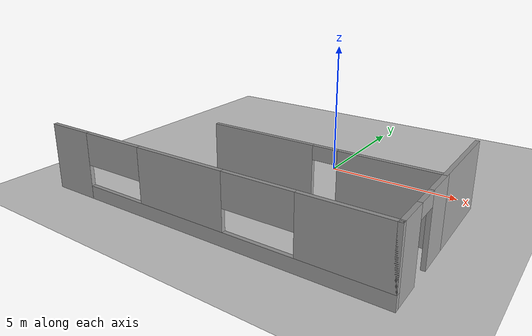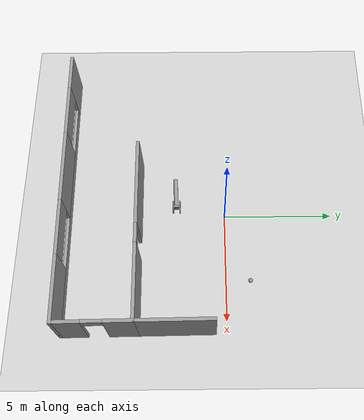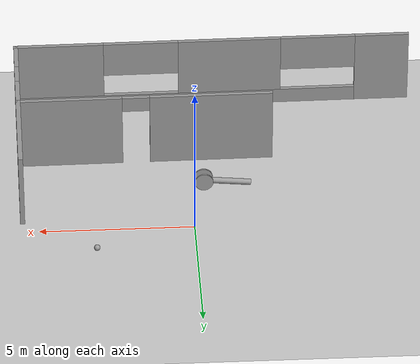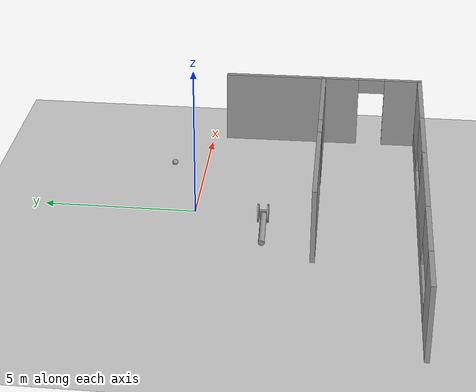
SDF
<sdf version="1.6">
 <world name="default">
  <model name="ground_plane">
   <static>1</static>
   <link name="link">
    <collision name="collision">
     <geometry><plane><normal>0 0 1</normal><size>100 100</size></plane></geometry>
     <surface>
      <contact><collide_bitmask>65535</collide_bitmask></contact>
      <friction><ode><mu>100</mu><mu2>50</mu2></ode></friction>
     </surface>
    </collision>
    <visual name="visual">
     <cast_shadows>0</cast_shadows>
     <geometry><plane><normal>0 0 1</normal><size>100 100</size></plane></geometry>
     <material>
      <script><uri>file://media/materials/scripts/gazebo.material</uri><name>Gazebo/Grey</name></script>
     </material>
    </visual>
   </link>
  </model>
  <model name="Robo-Space.sdf">
   <link name="Wall_10">
    <pose>0 -3.35 0 0 -0 0</pose>
    <visual name="Wall_10_Visual_0">
     <pose>-5.72 0 1.25 0 -0 0</pose>
     <geometry><box><size>1.81 0.15 2.5</size></box></geometry>
     <material>
      <script><uri>file://media/materials/scripts/gazebo.material</uri><name>Gazebo/Grey</name></script>
      <ambient>1 1 1 1</ambient>
      <shader type="pixel"/>
      <diffuse>0.7 0.7 0.7 1</diffuse>
      <specular>0.01 0.01 0.01 1</specular>
      <emissive>0 0 0 1</emissive>
     </material>
     <meta><layer>0</layer></meta>
    </visual>
    <visual name="Wall_10_Visual_1">
     <pose>0.905 0 0.25 0 -0 0</pose>
     <geometry><box><size>11.44 0.15 0.5</size></box></geometry>
     <material>
      <script><uri>file://media/materials/scripts/gazebo.material</uri><name>Gazebo/Grey</name></script>
      <ambient>1 1 1 1</ambient>
      <shader type="pixel"/>
      <diffuse>0.7 0.7 0.7 1</diffuse>
      <specular>0.01 0.01 0.01 1</specular>
      <emissive>0 0 0 1</emissive>
     </material>
     <meta><layer>0</layer></meta>
    </visual>
    <visual name="Wall_10_Visual_2">
     <pose>-0.5925 0 1.5 0 -0 0</pose>
     <geometry><box><size>3.445 0.15 2</size></box></geometry>
     <material>
      <script><uri>file://media/materials/scripts/gazebo.material</uri><name>Gazebo/Grey</name></script>
      <ambient>1 1 1 1</ambient>
      <shader type="pixel"/>
      <diffuse>0.7 0.7 0.7 1</diffuse>
      <specular>0.01 0.01 0.01 1</specular>
      <emissive>0 0 0 1</emissive>
     </material>
     <meta><layer>0</layer></meta>
    </visual>
    <visual name="Wall_10_Visual_3">
     <pose>5.1275 0 1.5 0 -0 0</pose>
     <geometry><box><size>2.995 0.15 2</size></box></geometry>
     <material>
      <script><uri>file://media/materials/scripts/gazebo.material</uri><name>Gazebo/Grey</name></script>
      <ambient>1 1 1 1</ambient>
      <shader type="pixel"/>
      <diffuse>0.7 0.7 0.7 1</diffuse>
      <specular>0.01 0.01 0.01 1</specular>
      <emissive>0 0 0 1</emissive>
     </material>
     <meta><layer>0</layer></meta>
    </visual>
    <visual name="Wall_10_Visual_4">
     <pose>-3.565 0 1.9 0 -0 0</pose>
     <geometry><box><size>2.5 0.15 1.2</size></box></geometry>
     <material>
      <script><uri>file://media/materials/scripts/gazebo.material</uri><name>Gazebo/Grey</name></script>
      <ambient>1 1 1 1</ambient>
      <shader type="pixel"/>
      <diffuse>0.7 0.7 0.7 1</diffuse>
      <specular>0.01 0.01 0.01 1</specular>
      <emissive>0 0 0 1</emissive>
     </material>
     <meta><layer>0</layer></meta>
    </visual>
    <visual name="Wall_10_Visual_5">
     <pose>2.38 0 1.9 0 -0 0</pose>
     <geometry><box><size>2.5 0.15 1.2</size></box></geometry>
     <material>
      <script><uri>file://media/materials/scripts/gazebo.material</uri><name>Gazebo/Grey</name></script>
      <ambient>1 1 1 1</ambient>
      <shader type="pixel"/>
      <diffuse>0.7 0.7 0.7 1</diffuse>
      <specular>0.01 0.01 0.01 1</specular>
      <emissive>0 0 0 1</emissive>
     </material>
     <meta><layer>0</layer></meta>
    </visual>
    <collision name="Wall_10_Collision_0">
     <pose>-5.72 0 1.25 0 -0 0</pose>
     <geometry><box><size>1.81 0.15 2.5</size></box></geometry>
     <surface>
      <friction>
       <ode><mu>1</mu><mu2>1</mu2><fdir1>0 0 0</fdir1><slip1>0</slip1><slip2>0</slip2></ode>
       <torsional>
        <coefficient>1</coefficient>
        <patch_radius>0</patch_radius>
        <surface_radius>0</surface_radius>
        <use_patch_radius>1</use_patch_radius>
        <ode><slip>0</slip></ode>
       </torsional>
      </friction>
      <bounce><restitution_coefficient>0</restitution_coefficient><threshold>1e+06</threshold></bounce>
      <contact>
       <collide_without_contact>0</collide_without_contact>
       <collide_without_contact_bitmask>1</collide_without_contact_bitmask>
       <collide_bitmask>1</collide_bitmask>
       <ode>
        <soft_cfm>0</soft_cfm>
        <soft_erp>0.2</soft_erp>
        <kp>1e+13</kp>
        <kd>1</kd>
        <max_vel>0.01</max_vel>
        <min_depth>0</min_depth>
       </ode>
       <bullet>
        <split_impulse>1</split_impulse>
        <split_impulse_penetration_threshold>-0.01</split_impulse_penetration_threshold>
        <soft_cfm>0</soft_cfm>
        <soft_erp>0.2</soft_erp>
        <kp>1e+13</kp>
        <kd>1</kd>
       </bullet>
      </contact>
     </surface>
    </collision>
    <collision name="Wall_10_Collision_1">
     <pose>0.905 0 0.25 0 -0 0</pose>
     <geometry><box><size>11.44 0.15 0.5</size></box></geometry>
     <surface>
      <friction>
       <ode><mu>1</mu><mu2>1</mu2><fdir1>0 0 0</fdir1><slip1>0</slip1><slip2>0</slip2></ode>
       <torsional>
        <coefficient>1</coefficient>
        <patch_radius>0</patch_radius>
        <surface_radius>0</surface_radius>
        <use_patch_radius>1</use_patch_radius>
        <ode><slip>0</slip></ode>
       </torsional>
      </friction>
      <bounce><restitution_coefficient>0</restitution_coefficient><threshold>1e+06</threshold></bounce>
      <contact>
       <collide_without_contact>0</collide_without_contact>
       <collide_without_contact_bitmask>1</collide_without_contact_bitmask>
       <collide_bitmask>1</collide_bitmask>
       <ode>
        <soft_cfm>0</soft_cfm>
        <soft_erp>0.2</soft_erp>
        <kp>1e+13</kp>
        <kd>1</kd>
        <max_vel>0.01</max_vel>
        <min_depth>0</min_depth>
       </ode>
       <bullet>
        <split_impulse>1</split_impulse>
        <split_impulse_penetration_threshold>-0.01</split_impulse_penetration_threshold>
        <soft_cfm>0</soft_cfm>
        <soft_erp>0.2</soft_erp>
        <kp>1e+13</kp>
        <kd>1</kd>
       </bullet>
      </contact>
     </surface>
    </collision>
    <collision name="Wall_10_Collision_2">
     <pose>-0.5925 0 1.5 0 -0 0</pose>
     <geometry><box><size>3.445 0.15 2</size></box></geometry>
     <surface>
      <friction>
       <ode><mu>1</mu><mu2>1</mu2><fdir1>0 0 0</fdir1><slip1>0</slip1><slip2>0</slip2></ode>
       <torsional>
        <coefficient>1</coefficient>
        <patch_radius>0</patch_radius>
        <surface_radius>0</surface_radius>
        <use_patch_radius>1</use_patch_radius>
        <ode><slip>0</slip></ode>
       </torsional>
      </friction>
      <bounce><restitution_coefficient>0</restitution_coefficient><threshold>1e+06</threshold></bounce>
      <contact>
       <collide_without_contact>0</collide_without_contact>
       <collide_without_contact_bitmask>1</collide_without_contact_bitmask>
       <collide_bitmask>1</collide_bitmask>
       <ode>
        <soft_cfm>0</soft_cfm>
        <soft_erp>0.2</soft_erp>
        <kp>1e+13</kp>
        <kd>1</kd>
        <max_vel>0.01</max_vel>
        <min_depth>0</min_depth>
       </ode>
       <bullet>
        <split_impulse>1</split_impulse>
        <split_impulse_penetration_threshold>-0.01</split_impulse_penetration_threshold>
        <soft_cfm>0</soft_cfm>
        <soft_erp>0.2</soft_erp>
        <kp>1e+13</kp>
        <kd>1</kd>
       </bullet>
      </contact>
     </surface>
    </collision>
    <collision name="Wall_10_Collision_3">
     <pose>5.1275 0 1.5 0 -0 0</pose>
     <geometry><box><size>2.995 0.15 2</size></box></geometry>
     <surface>
      <friction>
       <ode><mu>1</mu><mu2>1</mu2><fdir1>0 0 0</fdir1><slip1>0</slip1><slip2>0</slip2></ode>
       <torsional>
        <coefficient>1</coefficient>
        <patch_radius>0</patch_radius>
        <surface_radius>0</surface_radius>
        <use_patch_radius>1</use_patch_radius>
        <ode><slip>0</slip></ode>
       </torsional>
      </friction>
      <bounce><restitution_coefficient>0</restitution_coefficient><threshold>1e+06</threshold></bounce>
      <contact>
       <collide_without_contact>0</collide_without_contact>
       <collide_without_contact_bitmask>1</collide_without_contact_bitmask>
       <collide_bitmask>1</collide_bitmask>
       <ode>
        <soft_cfm>0</soft_cfm>
        <soft_erp>0.2</soft_erp>
        <kp>1e+13</kp>
        <kd>1</kd>
        <max_vel>0.01</max_vel>
        <min_depth>0</min_depth>
       </ode>
       <bullet>
        <split_impulse>1</split_impulse>
        <split_impulse_penetration_threshold>-0.01</split_impulse_penetration_threshold>
        <soft_cfm>0</soft_cfm>
        <soft_erp>0.2</soft_erp>
        <kp>1e+13</kp>
        <kd>1</kd>
       </bullet>
      </contact>
     </surface>
    </collision>
    <collision name="Wall_10_Collision_4">
     <pose>-3.565 0 1.9 0 -0 0</pose>
     <geometry><box><size>2.5 0.15 1.2</size></box></geometry>
     <surface>
      <friction>
       <ode><mu>1</mu><mu2>1</mu2><fdir1>0 0 0</fdir1><slip1>0</slip1><slip2>0</slip2></ode>
       <torsional>
        <coefficient>1</coefficient>
        <patch_radius>0</patch_radius>
        <surface_radius>0</surface_radius>
        <use_patch_radius>1</use_patch_radius>
        <ode><slip>0</slip></ode>
       </torsional>
      </friction>
      <bounce><restitution_coefficient>0</restitution_coefficient><threshold>1e+06</threshold></bounce>
      <contact>
       <collide_without_contact>0</collide_without_contact>
       <collide_without_contact_bitmask>1</collide_without_contact_bitmask>
       <collide_bitmask>1</collide_bitmask>
       <ode>
        <soft_cfm>0</soft_cfm>
        <soft_erp>0.2</soft_erp>
        <kp>1e+13</kp>
        <kd>1</kd>
        <max_vel>0.01</max_vel>
        <min_depth>0</min_depth>
       </ode>
       <bullet>
        <split_impulse>1</split_impulse>
        <split_impulse_penetration_threshold>-0.01</split_impulse_penetration_threshold>
        <soft_cfm>0</soft_cfm>
        <soft_erp>0.2</soft_erp>
        <kp>1e+13</kp>
        <kd>1</kd>
       </bullet>
      </contact>
     </surface>
    </collision>
    <collision name="Wall_10_Collision_5">
     <pose>2.38 0 1.9 0 -0 0</pose>
     <geometry><box><size>2.5 0.15 1.2</size></box></geometry>
     <surface>
      <friction>
       <ode><mu>1</mu><mu2>1</mu2><fdir1>0 0 0</fdir1><slip1>0</slip1><slip2>0</slip2></ode>
       <torsional>
        <coefficient>1</coefficient>
        <patch_radius>0</patch_radius>
        <surface_radius>0</surface_radius>
        <use_patch_radius>1</use_patch_radius>
        <ode><slip>0</slip></ode>
       </torsional>
      </friction>
      <bounce><restitution_coefficient>0</restitution_coefficient><threshold>1e+06</threshold></bounce>
      <contact>
       <collide_without_contact>0</collide_without_contact>
       <collide_without_contact_bitmask>1</collide_without_contact_bitmask>
       <collide_bitmask>1</collide_bitmask>
       <ode>
        <soft_cfm>0</soft_cfm>
        <soft_erp>0.2</soft_erp>
        <kp>1e+13</kp>
        <kd>1</kd>
        <max_vel>0.01</max_vel>
        <min_depth>0</min_depth>
       </ode>
       <bullet>
        <split_impulse>1</split_impulse>
        <split_impulse_penetration_threshold>-0.01</split_impulse_penetration_threshold>
        <soft_cfm>0</soft_cfm>
        <soft_erp>0.2</soft_erp>
        <kp>1e+13</kp>
        <kd>1</kd>
       </bullet>
      </contact>
     </surface>
    </collision>
   </link>
   <link name="Wall_12">
    <pose>6.55 -1.675 0 0 0 -1.5708</pose>
    <visual name="Wall_12_Visual_0">
     <pose>-1.0975 0 1.25 0 -0 0</pose>
     <geometry><box><size>1.305 0.15 2.5</size></box></geometry>
     <material>
      <script><uri>file://media/materials/scripts/gazebo.material</uri><name>Gazebo/Grey</name></script>
      <ambient>1 1 1 1</ambient>
      <shader type="pixel"/>
      <diffuse>0.7 0.7 0.7 1</diffuse>
      <specular>0.01 0.01 0.01 1</specular>
      <emissive>0 0 0 1</emissive>
     </material>
     <meta><layer>0</layer></meta>
    </visual>
    <visual name="Wall_12_Visual_1">
     <pose>1.1025 0 1.25 0 -0 0</pose>
     <geometry><box><size>1.295 0.15 2.5</size></box></geometry>
     <material>
      <script><uri>file://media/materials/scripts/gazebo.material</uri><name>Gazebo/Grey</name></script>
      <ambient>1 1 1 1</ambient>
      <shader type="pixel"/>
      <diffuse>0.7 0.7 0.7 1</diffuse>
      <specular>0.01 0.01 0.01 1</specular>
      <emissive>0 0 0 1</emissive>
     </material>
     <meta><layer>0</layer></meta>
    </visual>
    <visual name="Wall_12_Visual_2">
     <pose>0.005 0 2.25 0 -0 0</pose>
     <geometry><box><size>0.9 0.15 0.5</size></box></geometry>
     <material>
      <script><uri>file://media/materials/scripts/gazebo.material</uri><name>Gazebo/Grey</name></script>
      <ambient>1 1 1 1</ambient>
      <shader type="pixel"/>
      <diffuse>0.7 0.7 0.7 1</diffuse>
      <specular>0.01 0.01 0.01 1</specular>
      <emissive>0 0 0 1</emissive>
     </material>
     <meta><layer>0</layer></meta>
    </visual>
    <collision name="Wall_12_Collision_0">
     <pose>-1.0975 0 1.25 0 -0 0</pose>
     <geometry><box><size>1.305 0.15 2.5</size></box></geometry>
     <surface>
      <friction>
       <ode><mu>1</mu><mu2>1</mu2><fdir1>0 0 0</fdir1><slip1>0</slip1><slip2>0</slip2></ode>
       <torsional>
        <coefficient>1</coefficient>
        <patch_radius>0</patch_radius>
        <surface_radius>0</surface_radius>
        <use_patch_radius>1</use_patch_radius>
        <ode><slip>0</slip></ode>
       </torsional>
      </friction>
      <bounce><restitution_coefficient>0</restitution_coefficient><threshold>1e+06</threshold></bounce>
      <contact>
       <collide_without_contact>0</collide_without_contact>
       <collide_without_contact_bitmask>1</collide_without_contact_bitmask>
       <collide_bitmask>1</collide_bitmask>
       <ode>
        <soft_cfm>0</soft_cfm>
        <soft_erp>0.2</soft_erp>
        <kp>1e+13</kp>
        <kd>1</kd>
        <max_vel>0.01</max_vel>
        <min_depth>0</min_depth>
       </ode>
       <bullet>
        <split_impulse>1</split_impulse>
        <split_impulse_penetration_threshold>-0.01</split_impulse_penetration_threshold>
        <soft_cfm>0</soft_cfm>
        <soft_erp>0.2</soft_erp>
        <kp>1e+13</kp>
        <kd>1</kd>
       </bullet>
      </contact>
     </surface>
    </collision>
    <collision name="Wall_12_Collision_2">
     <pose>0.005 0 2.25 0 -0 0</pose>
     <geometry><box><size>0.9 0.15 0.5</size></box></geometry>
     <surface>
      <friction>
       <ode><mu>1</mu><mu2>1</mu2><fdir1>0 0 0</fdir1><slip1>0</slip1><slip2>0</slip2></ode>
       <torsional>
        <coefficient>1</coefficient>
        <patch_radius>0</patch_radius>
        <surface_radius>0</surface_radius>
        <use_patch_radius>1</use_patch_radius>
        <ode><slip>0</slip></ode>
       </torsional>
      </friction>
      <bounce><restitution_coefficient>0</restitution_coefficient><threshold>1e+06</threshold></bounce>
      <contact>
       <collide_without_contact>0</collide_without_contact>
       <collide_without_contact_bitmask>1</collide_without_contact_bitmask>
       <collide_bitmask>1</collide_bitmask>
       <ode>
        <soft_cfm>0</soft_cfm>
        <soft_erp>0.2</soft_erp>
        <kp>1e+13</kp>
        <kd>1</kd>
        <max_vel>0.01</max_vel>
        <min_depth>0</min_depth>
       </ode>
       <bullet>
        <split_impulse>1</split_impulse>
        <split_impulse_penetration_threshold>-0.01</split_impulse_penetration_threshold>
        <soft_cfm>0</soft_cfm>
        <soft_erp>0.2</soft_erp>
        <kp>1e+13</kp>
        <kd>1</kd>
       </bullet>
      </contact>
     </surface>
    </collision>
    <collision name="Wall_12_Collision_1">
     <pose>1.1025 0 1.25 0 -0 0</pose>
     <geometry><box><size>1.295 0.15 2.5</size></box></geometry>
     <surface>
      <friction>
       <ode><mu>1</mu><mu2>1</mu2><fdir1>0 0 0</fdir1><slip1>0</slip1><slip2>0</slip2></ode>
       <torsional>
        <coefficient>1</coefficient>
        <patch_radius>0</patch_radius>
        <surface_radius>0</surface_radius>
        <use_patch_radius>1</use_patch_radius>
        <ode><slip>0</slip></ode>
       </torsional>
      </friction>
      <bounce><restitution_coefficient>0</restitution_coefficient><threshold>1e+06</threshold></bounce>
      <contact>
       <collide_without_contact>0</collide_without_contact>
       <collide_without_contact_bitmask>1</collide_without_contact_bitmask>
       <collide_bitmask>1</collide_bitmask>
       <ode>
        <soft_cfm>0</soft_cfm>
        <soft_erp>0.2</soft_erp>
        <kp>1e+13</kp>
        <kd>1</kd>
        <max_vel>0.01</max_vel>
        <min_depth>0</min_depth>
       </ode>
       <bullet>
        <split_impulse>1</split_impulse>
        <split_impulse_penetration_threshold>-0.01</split_impulse_penetration_threshold>
        <soft_cfm>0</soft_cfm>
        <soft_erp>0.2</soft_erp>
        <kp>1e+13</kp>
        <kd>1</kd>
       </bullet>
      </contact>
     </surface>
    </collision>
   </link>
   <link name="Wall_6">
    <pose>6.55 1.675 0 0 0 -1.5708</pose>
    <visual name="Wall_6_Visual">
     <pose>0 0 1.25 0 -0 0</pose>
     <geometry><box><size>3.5 0.15 2.5</size></box></geometry>
     <material>
      <script><uri>file://media/materials/scripts/gazebo.material</uri><name>Gazebo/Grey</name></script>
      <ambient>1 1 1 1</ambient>
      <shader type="pixel"/>
      <diffuse>0.7 0.7 0.7 1</diffuse>
      <specular>0.01 0.01 0.01 1</specular>
      <emissive>0 0 0 1</emissive>
     </material>
     <meta><layer>0</layer></meta>
    </visual>
    <collision name="Wall_6_Collision">
     <pose>0 0 1.25 0 -0 0</pose>
     <geometry><box><size>3.5 0.15 2.5</size></box></geometry>
     <surface>
      <friction>
       <ode><mu>1</mu><mu2>1</mu2><fdir1>0 0 0</fdir1><slip1>0</slip1><slip2>0</slip2></ode>
       <torsional>
        <coefficient>1</coefficient>
        <patch_radius>0</patch_radius>
        <surface_radius>0</surface_radius>
        <use_patch_radius>1</use_patch_radius>
        <ode><slip>0</slip></ode>
       </torsional>
      </friction>
      <bounce><restitution_coefficient>0</restitution_coefficient><threshold>1e+06</threshold></bounce>
      <contact>
       <collide_without_contact>0</collide_without_contact>
       <collide_without_contact_bitmask>1</collide_without_contact_bitmask>
       <collide_bitmask>1</collide_bitmask>
       <ode>
        <soft_cfm>0</soft_cfm>
        <soft_erp>0.2</soft_erp>
        <kp>1e+13</kp>
        <kd>1</kd>
        <max_vel>0.01</max_vel>
        <min_depth>0</min_depth>
       </ode>
       <bullet>
        <split_impulse>1</split_impulse>
        <split_impulse_penetration_threshold>-0.01</split_impulse_penetration_threshold>
        <soft_cfm>0</soft_cfm>
        <soft_erp>0.2</soft_erp>
        <kp>1e+13</kp>
        <kd>1</kd>
       </bullet>
      </contact>
     </surface>
    </collision>
   </link>
   <link name="Wall_7">
    <pose>2.425 0 0 0 -0 3.14159</pose>
    <visual name="Wall_7_Visual_0">
     <pose>-2.4675 0 1.25 0 -0 0</pose>
     <geometry><box><size>3.465 0.15 2.5</size></box></geometry>
     <material>
      <script><uri>file://media/materials/scripts/gazebo.material</uri><name>Gazebo/Grey</name></script>
      <ambient>1 1 1 1</ambient>
      <shader type="pixel"/>
      <diffuse>0.7 0.7 0.7 1</diffuse>
      <specular>0.01 0.01 0.01 1</specular>
      <emissive>0 0 0 1</emissive>
     </material>
     <meta><layer>0</layer></meta>
    </visual>
    <visual name="Wall_7_Visual_1">
     <pose>2.1825 0 1.25 0 -0 0</pose>
     <geometry><box><size>4.035 0.15 2.5</size></box></geometry>
     <material>
      <script><uri>file://media/materials/scripts/gazebo.material</uri><name>Gazebo/Grey</name></script>
      <ambient>1 1 1 1</ambient>
      <shader type="pixel"/>
      <diffuse>0.7 0.7 0.7 1</diffuse>
      <specular>0.01 0.01 0.01 1</specular>
      <emissive>0 0 0 1</emissive>
     </material>
     <meta><layer>0</layer></meta>
    </visual>
    <visual name="Wall_7_Visual_2">
     <pose>-0.285 0 2.25 0 -0 0</pose>
     <geometry><box><size>0.9 0.15 0.5</size></box></geometry>
     <material>
      <script><uri>file://media/materials/scripts/gazebo.material</uri><name>Gazebo/Grey</name></script>
      <ambient>1 1 1 1</ambient>
      <shader type="pixel"/>
      <diffuse>0.7 0.7 0.7 1</diffuse>
      <specular>0.01 0.01 0.01 1</specular>
      <emissive>0 0 0 1</emissive>
     </material>
     <meta><layer>0</layer></meta>
    </visual>
    <collision name="Wall_7_Collision_0">
     <pose>-2.4675 0 1.25 0 -0 0</pose>
     <geometry><box><size>3.465 0.15 2.5</size></box></geometry>
     <surface>
      <friction>
       <ode><mu>1</mu><mu2>1</mu2><fdir1>0 0 0</fdir1><slip1>0</slip1><slip2>0</slip2></ode>
       <torsional>
        <coefficient>1</coefficient>
        <patch_radius>0</patch_radius>
        <surface_radius>0</surface_radius>
        <use_patch_radius>1</use_patch_radius>
        <ode><slip>0</slip></ode>
       </torsional>
      </friction>
      <bounce><restitution_coefficient>0</restitution_coefficient><threshold>1e+06</threshold></bounce>
      <contact>
       <collide_without_contact>0</collide_without_contact>
       <collide_without_contact_bitmask>1</collide_without_contact_bitmask>
       <collide_bitmask>1</collide_bitmask>
       <ode>
        <soft_cfm>0</soft_cfm>
        <soft_erp>0.2</soft_erp>
        <kp>1e+13</kp>
        <kd>1</kd>
        <max_vel>0.01</max_vel>
        <min_depth>0</min_depth>
       </ode>
       <bullet>
        <split_impulse>1</split_impulse>
        <split_impulse_penetration_threshold>-0.01</split_impulse_penetration_threshold>
        <soft_cfm>0</soft_cfm>
        <soft_erp>0.2</soft_erp>
        <kp>1e+13</kp>
        <kd>1</kd>
       </bullet>
      </contact>
     </surface>
    </collision>
    <collision name="Wall_7_Collision_1">
     <pose>2.1825 0 1.25 0 -0 0</pose>
     <geometry><box><size>4.035 0.15 2.5</size></box></geometry>
     <surface>
      <friction>
       <ode><mu>1</mu><mu2>1</mu2><fdir1>0 0 0</fdir1><slip1>0</slip1><slip2>0</slip2></ode>
       <torsional>
        <coefficient>1</coefficient>
        <patch_radius>0</patch_radius>
        <surface_radius>0</surface_radius>
        <use_patch_radius>1</use_patch_radius>
        <ode><slip>0</slip></ode>
       </torsional>
      </friction>
      <bounce><restitution_coefficient>0</restitution_coefficient><threshold>1e+06</threshold></bounce>
      <contact>
       <collide_without_contact>0</collide_without_contact>
       <collide_without_contact_bitmask>1</collide_without_contact_bitmask>
       <collide_bitmask>1</collide_bitmask>
       <ode>
        <soft_cfm>0</soft_cfm>
        <soft_erp>0.2</soft_erp>
        <kp>1e+13</kp>
        <kd>1</kd>
        <max_vel>0.01</max_vel>
        <min_depth>0</min_depth>
       </ode>
       <bullet>
        <split_impulse>1</split_impulse>
        <split_impulse_penetration_threshold>-0.01</split_impulse_penetration_threshold>
        <soft_cfm>0</soft_cfm>
        <soft_erp>0.2</soft_erp>
        <kp>1e+13</kp>
        <kd>1</kd>
       </bullet>
      </contact>
     </surface>
    </collision>
    <collision name="Wall_7_Collision_2">
     <pose>-0.285 0 2.25 0 -0 0</pose>
     <geometry><box><size>0.9 0.15 0.5</size></box></geometry>
     <surface>
      <friction>
       <ode><mu>1</mu><mu2>1</mu2><fdir1>0 0 0</fdir1><slip1>0</slip1><slip2>0</slip2></ode>
       <torsional>
        <coefficient>1</coefficient>
        <patch_radius>0</patch_radius>
        <surface_radius>0</surface_radius>
        <use_patch_radius>1</use_patch_radius>
        <ode><slip>0</slip></ode>
       </torsional>
      </friction>
      <bounce><restitution_coefficient>0</restitution_coefficient><threshold>1e+06</threshold></bounce>
      <contact>
       <collide_without_contact>0</collide_without_contact>
       <collide_without_contact_bitmask>1</collide_without_contact_bitmask>
       <collide_bitmask>1</collide_bitmask>
       <ode>
        <soft_cfm>0</soft_cfm>
        <soft_erp>0.2</soft_erp>
        <kp>1e+13</kp>
        <kd>1</kd>
        <max_vel>0.01</max_vel>
        <min_depth>0</min_depth>
       </ode>
       <bullet>
        <split_impulse>1</split_impulse>
        <split_impulse_penetration_threshold>-0.01</split_impulse_penetration_threshold>
        <soft_cfm>0</soft_cfm>
        <soft_erp>0.2</soft_erp>
        <kp>1e+13</kp>
        <kd>1</kd>
       </bullet>
      </contact>
     </surface>
    </collision>
   </link>
   <static>1</static>
   <pose>-0.980002 -3.96999 0 0 -0 0.01242</pose>
  </model>
  <model name="Robot-1_clone_0">
   <link name="link_0">
    <pose>-0.000625 -0.000625 -0.1875 0 -0 0</pose>
    <inertial>
     <mass>1</mass>
     <inertia>
      <ixx>0.166667</ixx>
      <ixy>0</ixy>
      <ixz>0</ixz>
      <iyy>0.166667</iyy>
      <iyz>0</iyz>
      <izz>0.166667</izz>
     </inertia>
    </inertial>
    <visual name="visual">
     <geometry><box><size>0.25 0.25 0.1</size></box></geometry>
     <material>
      <lighting>1</lighting>
      <script><uri>file://media/materials/scripts/gazebo.material</uri><name>Gazebo/Grey</name></script>
      <shader type="pixel"><normal_map>__default__</normal_map></shader>
      <ambient>0.3 0.3 0.3 1</ambient>
      <diffuse>0.7 0.7 0.7 1</diffuse>
      <specular>0.01 0.01 0.01 1</specular>
      <emissive>0 0 0 1</emissive>
     </material>
    </visual>
    <collision name="collision">
     <geometry><box><size>0.25 0.25 0.1</size></box></geometry>
     <surface>
      <friction>
       <ode><mu>1</mu><mu2>1</mu2><fdir1>0 0 0</fdir1><slip1>0</slip1><slip2>0</slip2></ode>
       <torsional>
        <coefficient>1</coefficient>
        <patch_radius>0</patch_radius>
        <surface_radius>0</surface_radius>
        <use_patch_radius>1</use_patch_radius>
        <ode><slip>0</slip></ode>
       </torsional>
      </friction>
      <bounce><restitution_coefficient>0</restitution_coefficient><threshold>1e+06</threshold></bounce>
      <contact>
       <collide_without_contact>0</collide_without_contact>
       <collide_without_contact_bitmask>1</collide_without_contact_bitmask>
       <collide_bitmask>1</collide_bitmask>
       <ode>
        <soft_cfm>0</soft_cfm>
        <soft_erp>0.2</soft_erp>
        <kp>1e+13</kp>
        <kd>1</kd>
        <max_vel>0.01</max_vel>
        <min_depth>0</min_depth>
       </ode>
       <bullet>
        <split_impulse>1</split_impulse>
        <split_impulse_penetration_threshold>-0.01</split_impulse_penetration_threshold>
        <soft_cfm>0</soft_cfm>
        <soft_erp>0.2</soft_erp>
        <kp>1e+13</kp>
        <kd>1</kd>
       </bullet>
      </contact>
     </surface>
    </collision>
   </link>
   <link name="link_1_clone">
    <pose>0.006875 -0.150654 -0.1875 1.5707 -0 0</pose>
    <inertial>
     <mass>1</mass>
     <inertia><ixx>0.145833</ixx><ixy>0</ixy><ixz>0</ixz><iyy>0.145833</iyy><iyz>0</iyz><izz>0.125</izz></inertia>
    </inertial>
    <visual name="visual">
     <geometry><cylinder><radius>0.3</radius><length>0.05</length></cylinder></geometry>
     <material>
      <lighting>1</lighting>
      <script><uri>file://media/materials/scripts/gazebo.material</uri><name>Gazebo/Grey</name></script>
      <shader type="pixel"><normal_map>__default__</normal_map></shader>
      <ambient>0.3 0.3 0.3 1</ambient>
      <diffuse>0.7 0.7 0.7 1</diffuse>
      <specular>0.01 0.01 0.01 1</specular>
      <emissive>0 0 0 1</emissive>
     </material>
    </visual>
    <collision name="collision">
     <geometry><cylinder><radius>0.3</radius><length>0.05</length></cylinder></geometry>
     <surface>
      <friction>
       <ode><mu>1</mu><mu2>1</mu2><fdir1>0 0 0</fdir1><slip1>0</slip1><slip2>0</slip2></ode>
       <torsional>
        <coefficient>1</coefficient>
        <patch_radius>0</patch_radius>
        <surface_radius>0</surface_radius>
        <use_patch_radius>1</use_patch_radius>
        <ode><slip>0</slip></ode>
       </torsional>
      </friction>
      <bounce><restitution_coefficient>0</restitution_coefficient><threshold>1e+06</threshold></bounce>
      <contact>
       <collide_without_contact>0</collide_without_contact>
       <collide_without_contact_bitmask>1</collide_without_contact_bitmask>
       <collide_bitmask>1</collide_bitmask>
       <ode>
        <soft_cfm>0</soft_cfm>
        <soft_erp>0.2</soft_erp>
        <kp>1e+13</kp>
        <kd>1</kd>
        <max_vel>0.01</max_vel>
        <min_depth>0</min_depth>
       </ode>
       <bullet>
        <split_impulse>1</split_impulse>
        <split_impulse_penetration_threshold>-0.01</split_impulse_penetration_threshold>
        <soft_cfm>0</soft_cfm>
        <soft_erp>0.2</soft_erp>
        <kp>1e+13</kp>
        <kd>1</kd>
       </bullet>
      </contact>
     </surface>
    </collision>
   </link>
   <link name="link_1_clone_clone">
    <pose>0.006875 0.164404 -0.1875 1.5707 -0 0</pose>
    <inertial>
     <mass>1</mass>
     <inertia><ixx>0.145833</ixx><ixy>0</ixy><ixz>0</ixz><iyy>0.145833</iyy><iyz>0</iyz><izz>0.125</izz></inertia>
    </inertial>
    <visual name="visual">
     <geometry><cylinder><radius>0.3</radius><length>0.05</length></cylinder></geometry>
     <material>
      <lighting>1</lighting>
      <script><uri>file://media/materials/scripts/gazebo.material</uri><name>Gazebo/Grey</name></script>
      <shader type="pixel"><normal_map>__default__</normal_map></shader>
      <ambient>0.3 0.3 0.3 1</ambient>
      <diffuse>0.7 0.7 0.7 1</diffuse>
      <specular>0.01 0.01 0.01 1</specular>
      <emissive>0 0 0 1</emissive>
     </material>
    </visual>
    <collision name="collision">
     <geometry><cylinder><radius>0.3</radius><length>0.05</length></cylinder></geometry>
     <surface>
      <friction>
       <ode><mu>1</mu><mu2>1</mu2><fdir1>0 0 0</fdir1><slip1>0</slip1><slip2>0</slip2></ode>
       <torsional>
        <coefficient>1</coefficient>
        <patch_radius>0</patch_radius>
        <surface_radius>0</surface_radius>
        <use_patch_radius>1</use_patch_radius>
        <ode><slip>0</slip></ode>
       </torsional>
      </friction>
      <bounce><restitution_coefficient>0</restitution_coefficient><threshold>1e+06</threshold></bounce>
      <contact>
       <collide_without_contact>0</collide_without_contact>
       <collide_without_contact_bitmask>1</collide_without_contact_bitmask>
       <collide_bitmask>1</collide_bitmask>
       <ode>
        <soft_cfm>0</soft_cfm>
        <soft_erp>0.2</soft_erp>
        <kp>1e+13</kp>
        <kd>1</kd>
        <max_vel>0.01</max_vel>
        <min_depth>0</min_depth>
       </ode>
       <bullet>
        <split_impulse>1</split_impulse>
        <split_impulse_penetration_threshold>-0.01</split_impulse_penetration_threshold>
        <soft_cfm>0</soft_cfm>
        <soft_erp>0.2</soft_erp>
        <kp>1e+13</kp>
        <kd>1</kd>
       </bullet>
      </contact>
     </surface>
    </collision>
   </link>
   <link name="link_3">
    <pose>-0.013125 -0.013125 0.5625 0 -0 0</pose>
    <inertial>
     <mass>1</mass>
     <inertia><ixx>0.145833</ixx><ixy>0</ixy><ixz>0</ixz><iyy>0.145833</iyy><iyz>0</iyz><izz>0.125</izz></inertia>
    </inertial>
    <visual name="visual">
     <geometry><cylinder><radius>0.1</radius><length>1.6</length></cylinder></geometry>
     <material>
      <lighting>1</lighting>
      <script><uri>file://media/materials/scripts/gazebo.material</uri><name>Gazebo/Grey</name></script>
      <shader type="pixel"><normal_map>__default__</normal_map></shader>
      <ambient>0.3 0.3 0.3 1</ambient>
      <diffuse>0.7 0.7 0.7 1</diffuse>
      <specular>0.01 0.01 0.01 1</specular>
      <emissive>0 0 0 1</emissive>
     </material>
    </visual>
    <collision name="collision">
     <geometry><cylinder><radius>0.1</radius><length>1.6</length></cylinder></geometry>
     <surface>
      <friction>
       <ode><mu>1</mu><mu2>1</mu2><fdir1>0 0 0</fdir1><slip1>0</slip1><slip2>0</slip2></ode>
       <torsional>
        <coefficient>1</coefficient>
        <patch_radius>0</patch_radius>
        <surface_radius>0</surface_radius>
        <use_patch_radius>1</use_patch_radius>
        <ode><slip>0</slip></ode>
       </torsional>
      </friction>
      <bounce><restitution_coefficient>0</restitution_coefficient><threshold>1e+06</threshold></bounce>
      <contact>
       <collide_without_contact>0</collide_without_contact>
       <collide_without_contact_bitmask>1</collide_without_contact_bitmask>
       <collide_bitmask>1</collide_bitmask>
       <ode>
        <soft_cfm>0</soft_cfm>
        <soft_erp>0.2</soft_erp>
        <kp>1e+13</kp>
        <kd>1</kd>
        <max_vel>0.01</max_vel>
        <min_depth>0</min_depth>
       </ode>
       <bullet>
        <split_impulse>1</split_impulse>
        <split_impulse_penetration_threshold>-0.01</split_impulse_penetration_threshold>
        <soft_cfm>0</soft_cfm>
        <soft_erp>0.2</soft_erp>
        <kp>1e+13</kp>
        <kd>1</kd>
       </bullet>
      </contact>
     </surface>
    </collision>
   </link>
   <joint name="link_0_JOINT_0" type="revolute">
    <parent>link_0</parent>
    <child>link_1_clone</child>
    <axis>
     <xyz>0 0 1</xyz>
     <use_parent_model_frame>0</use_parent_model_frame>
     <limit>
      <lower>-1.79769e+308</lower>
      <upper>1.79769e+308</upper>
      <effort>-1</effort>
      <velocity>-1</velocity>
     </limit>
     <dynamics>
      <spring_reference>0</spring_reference>
      <spring_stiffness>0</spring_stiffness>
      <damping>0</damping>
     </dynamics>
    </axis>
    <physics>
     <ode><limit><cfm>0</cfm><erp>0.2</erp></limit><suspension><cfm>0</cfm><erp>0.2</erp></suspension></ode>
    </physics>
   </joint>
   <joint name="link_0_JOINT_3" type="revolute">
    <parent>link_0</parent>
    <child>link_1_clone_clone</child>
    <axis>
     <xyz>0 0 1</xyz>
     <use_parent_model_frame>0</use_parent_model_frame>
     <limit>
      <lower>-1.79769e+308</lower>
      <upper>1.79769e+308</upper>
      <effort>-1</effort>
      <velocity>-1</velocity>
     </limit>
     <dynamics>
      <spring_reference>0</spring_reference>
      <spring_stiffness>0</spring_stiffness>
      <damping>0</damping>
     </dynamics>
    </axis>
    <physics>
     <ode><limit><cfm>0</cfm><erp>0.2</erp></limit><suspension><cfm>0</cfm><erp>0.2</erp></suspension></ode>
    </physics>
   </joint>
   <joint name="link_0_JOINT_6" type="fixed">
    <parent>link_0</parent>
    <child>link_3</child>
    <physics>
     <ode><limit><cfm>0</cfm><erp>0.2</erp></limit><suspension><cfm>0</cfm><erp>0.2</erp></suspension></ode>
    </physics>
   </joint>
   <static>0</static>
   <pose>-0.587269 -2.28394 0.271299 -3.14158 -1.45387 -3.1041</pose>
  </model>
  <model name="my_ball">
   <link name="link_0">
    <inertial>
     <mass>1</mass>
     <inertia><ixx>0.1</ixx><ixy>0</ixy><ixz>0</ixz><iyy>0.1</iyy><iyz>0</iyz><izz>0.1</izz></inertia>
    </inertial>
    <visual name="visual">
     <geometry><sphere><radius>0.1</radius></sphere></geometry>
     <material>
      <lighting>1</lighting>
      <script><uri>file://media/materials/scripts/gazebo.material</uri><name>Gazebo/Grey</name></script>
      <shader type="pixel"><normal_map>__default__</normal_map></shader>
      <ambient>1 1 1 1</ambient>
      <diffuse>1 1 1 1</diffuse>
      <specular>1 1 1 1</specular>
      <emissive>1 1 1 1</emissive>
     </material>
    </visual>
    <collision name="collision">
     <geometry><sphere><radius>0.1</radius></sphere></geometry>
     <surface>
      <friction>
       <ode><mu>1</mu><mu2>1</mu2><fdir1>0 0 0</fdir1><slip1>0</slip1><slip2>0</slip2></ode>
       <torsional>
        <coefficient>1</coefficient>
        <patch_radius>0</patch_radius>
        <surface_radius>0</surface_radius>
        <use_patch_radius>1</use_patch_radius>
        <ode><slip>0</slip></ode>
       </torsional>
      </friction>
      <bounce><restitution_coefficient>0</restitution_coefficient><threshold>1e+06</threshold></bounce>
      <contact>
       <collide_without_contact>0</collide_without_contact>
       <collide_without_contact_bitmask>1</collide_without_contact_bitmask>
       <collide_bitmask>1</collide_bitmask>
       <ode>
        <soft_cfm>0</soft_cfm>
        <soft_erp>0.2</soft_erp>
        <kp>1e+13</kp>
        <kd>1</kd>
        <max_vel>0.01</max_vel>
        <min_depth>0</min_depth>
       </ode>
       <bullet>
        <split_impulse>1</split_impulse>
        <split_impulse_penetration_threshold>-0.01</split_impulse_penetration_threshold>
        <soft_cfm>0</soft_cfm>
        <soft_erp>0.2</soft_erp>
        <kp>1e+13</kp>
        <kd>1</kd>
       </bullet>
      </contact>
     </surface>
    </collision>
   </link>
   <static>0</static>
   <pose>3.17297 1.11783 0.1 0 -0 0</pose>
  </model>
 </world>
</sdf>
